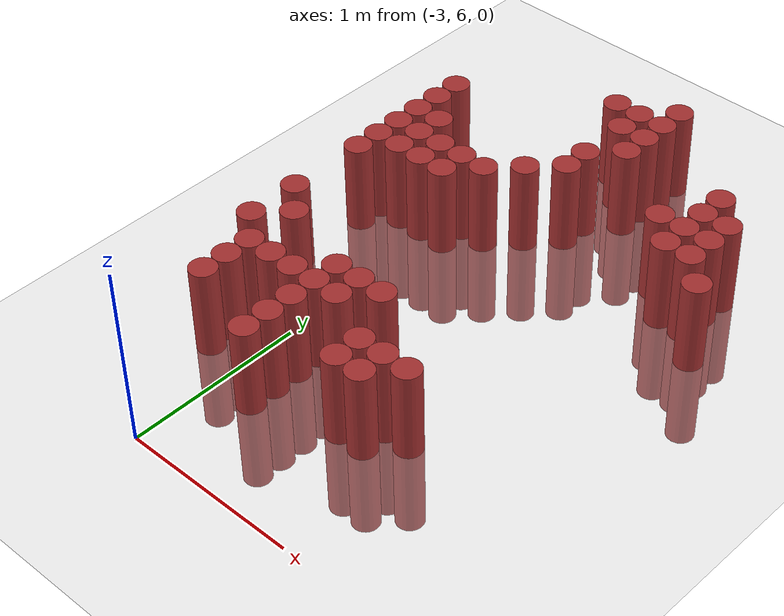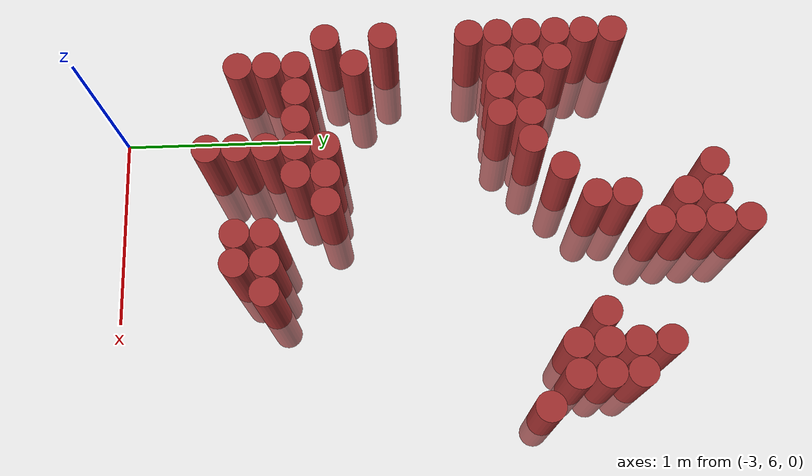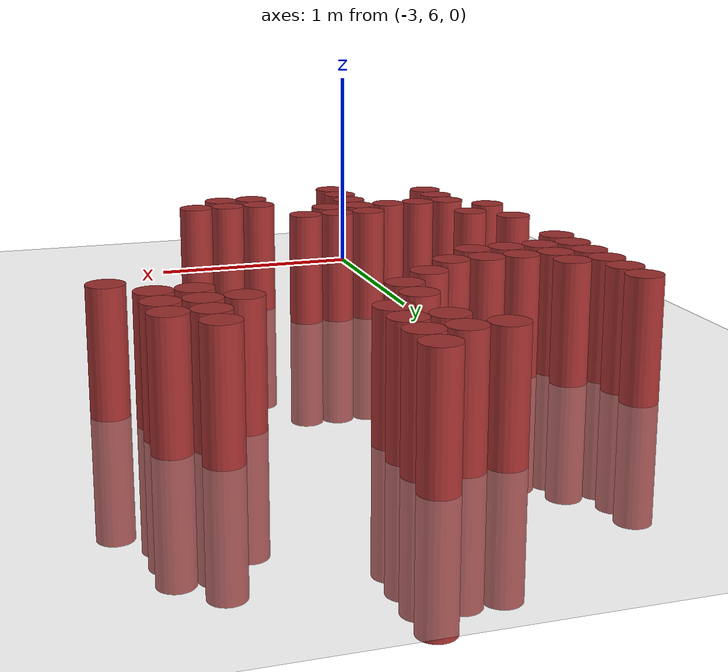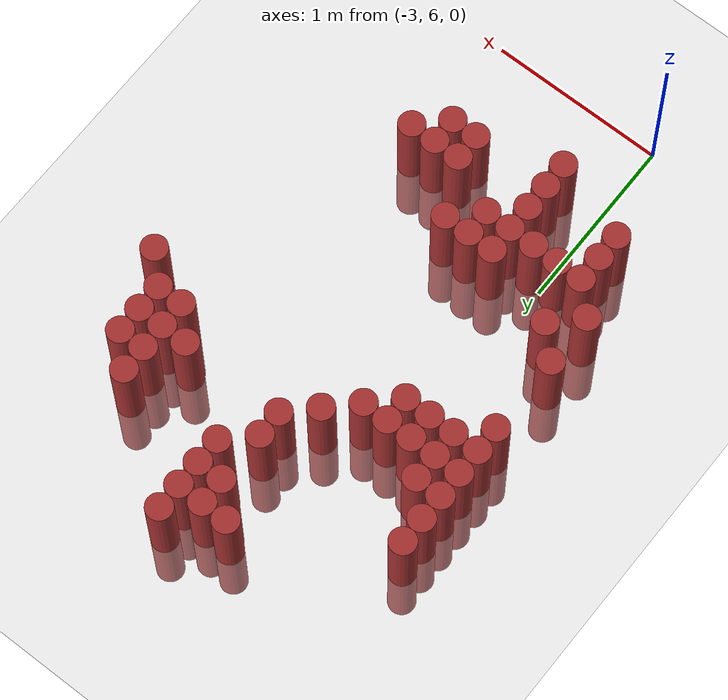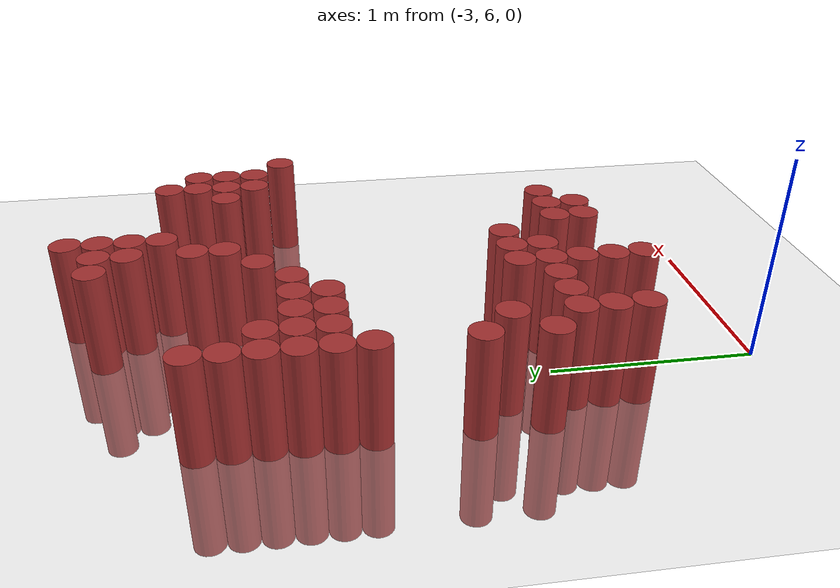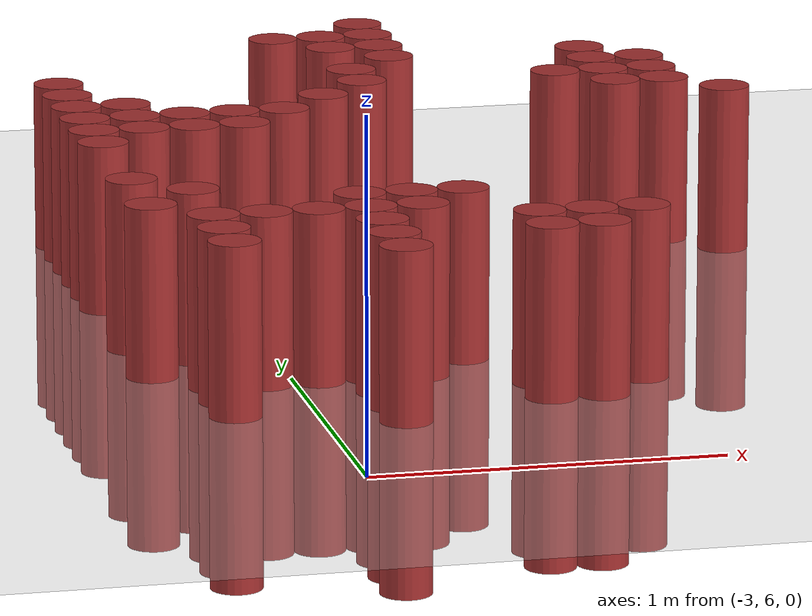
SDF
<sdf version="1.6">
 <world name="default">
  <model name="ground_plane">
   <static>1</static>
   <link name="link">
    <collision name="collision">
     <geometry><plane><normal>0 0 1</normal><size>100 100</size></plane></geometry>
     <surface><friction><ode><mu>100</mu><mu2>50</mu2></ode></friction></surface>
    </collision>
    <visual name="visual">
     <cast_shadows>0</cast_shadows>
     <geometry><plane><normal>0 0 1</normal><size>100 100</size></plane></geometry>
     <material>
      <script><uri>file://media/materials/scripts/gazebo.material</uri><name>Gazebo/Grey</name></script>
     </material>
    </visual>
   </link>
  </model>
  <model name="unit_cylinder_172">
   <static>1</static>
   <pose>-3.375000 7.125000 0.000000 0.000000 0.000000 0.000000</pose>
   <link name="link">
    <inertial>
     <mass>1</mass>
     <inertia><ixx>0.145833</ixx><ixy>0</ixy><ixz>0</ixz><iyy>0.145833</iyy><iyz>0</iyz><izz>0.125</izz></inertia>
    </inertial>
    <collision name="collision">
     <geometry><cylinder><radius>0.075000</radius><length>1</length></cylinder></geometry>
    </collision>
    <visual name="visual">
     <geometry><cylinder><radius>0.075000</radius><length>1</length></cylinder></geometry>
     <material>
      <ambient>0.648000 0.192000 0.192000 1</ambient>
      <diffuse>0.648000 0.192000 0.192000 1</diffuse>
     </material>
     <material>
      <script><name>Gazebo/Grey</name><uri>file://media/materials/scripts/gazebo.material</uri></script>
     </material>
    </visual>
   </link>
  </model>
  <model name="unit_cylinder_173">
   <static>1</static>
   <pose>-3.375000 7.425000 0.000000 0.000000 0.000000 0.000000</pose>
   <link name="link">
    <inertial>
     <mass>1</mass>
     <inertia><ixx>0.145833</ixx><ixy>0</ixy><ixz>0</ixz><iyy>0.145833</iyy><iyz>0</iyz><izz>0.125</izz></inertia>
    </inertial>
    <collision name="collision">
     <geometry><cylinder><radius>0.075000</radius><length>1</length></cylinder></geometry>
    </collision>
    <visual name="visual">
     <geometry><cylinder><radius>0.075000</radius><length>1</length></cylinder></geometry>
     <material>
      <ambient>0.648000 0.192000 0.192000 1</ambient>
      <diffuse>0.648000 0.192000 0.192000 1</diffuse>
     </material>
     <material>
      <script><name>Gazebo/Grey</name><uri>file://media/materials/scripts/gazebo.material</uri></script>
     </material>
    </visual>
   </link>
  </model>
  <model name="unit_cylinder_174">
   <static>1</static>
   <pose>-3.375000 7.875000 0.000000 0.000000 0.000000 0.000000</pose>
   <link name="link">
    <inertial>
     <mass>1</mass>
     <inertia><ixx>0.145833</ixx><ixy>0</ixy><ixz>0</ixz><iyy>0.145833</iyy><iyz>0</iyz><izz>0.125</izz></inertia>
    </inertial>
    <collision name="collision">
     <geometry><cylinder><radius>0.075000</radius><length>1</length></cylinder></geometry>
    </collision>
    <visual name="visual">
     <geometry><cylinder><radius>0.075000</radius><length>1</length></cylinder></geometry>
     <material>
      <ambient>0.648000 0.192000 0.192000 1</ambient>
      <diffuse>0.648000 0.192000 0.192000 1</diffuse>
     </material>
     <material>
      <script><name>Gazebo/Grey</name><uri>file://media/materials/scripts/gazebo.material</uri></script>
     </material>
    </visual>
   </link>
  </model>
  <model name="unit_cylinder_175">
   <static>1</static>
   <pose>-3.375000 8.025000 0.000000 0.000000 0.000000 0.000000</pose>
   <link name="link">
    <inertial>
     <mass>1</mass>
     <inertia><ixx>0.145833</ixx><ixy>0</ixy><ixz>0</ixz><iyy>0.145833</iyy><iyz>0</iyz><izz>0.125</izz></inertia>
    </inertial>
    <collision name="collision">
     <geometry><cylinder><radius>0.075000</radius><length>1</length></cylinder></geometry>
    </collision>
    <visual name="visual">
     <geometry><cylinder><radius>0.075000</radius><length>1</length></cylinder></geometry>
     <material>
      <ambient>0.648000 0.192000 0.192000 1</ambient>
      <diffuse>0.648000 0.192000 0.192000 1</diffuse>
     </material>
     <material>
      <script><name>Gazebo/Grey</name><uri>file://media/materials/scripts/gazebo.material</uri></script>
     </material>
    </visual>
   </link>
  </model>
  <model name="unit_cylinder_176">
   <static>1</static>
   <pose>-3.375000 8.175000 0.000000 0.000000 0.000000 0.000000</pose>
   <link name="link">
    <inertial>
     <mass>1</mass>
     <inertia><ixx>0.145833</ixx><ixy>0</ixy><ixz>0</ixz><iyy>0.145833</iyy><iyz>0</iyz><izz>0.125</izz></inertia>
    </inertial>
    <collision name="collision">
     <geometry><cylinder><radius>0.075000</radius><length>1</length></cylinder></geometry>
    </collision>
    <visual name="visual">
     <geometry><cylinder><radius>0.075000</radius><length>1</length></cylinder></geometry>
     <material>
      <ambient>0.648000 0.192000 0.192000 1</ambient>
      <diffuse>0.648000 0.192000 0.192000 1</diffuse>
     </material>
     <material>
      <script><name>Gazebo/Grey</name><uri>file://media/materials/scripts/gazebo.material</uri></script>
     </material>
    </visual>
   </link>
  </model>
  <model name="unit_cylinder_177">
   <static>1</static>
   <pose>-3.375000 8.325000 0.000000 0.000000 0.000000 0.000000</pose>
   <link name="link">
    <inertial>
     <mass>1</mass>
     <inertia><ixx>0.145833</ixx><ixy>0</ixy><ixz>0</ixz><iyy>0.145833</iyy><iyz>0</iyz><izz>0.125</izz></inertia>
    </inertial>
    <collision name="collision">
     <geometry><cylinder><radius>0.075000</radius><length>1</length></cylinder></geometry>
    </collision>
    <visual name="visual">
     <geometry><cylinder><radius>0.075000</radius><length>1</length></cylinder></geometry>
     <material>
      <ambient>0.648000 0.192000 0.192000 1</ambient>
      <diffuse>0.648000 0.192000 0.192000 1</diffuse>
     </material>
     <material>
      <script><name>Gazebo/Grey</name><uri>file://media/materials/scripts/gazebo.material</uri></script>
     </material>
    </visual>
   </link>
  </model>
  <model name="unit_cylinder_178">
   <static>1</static>
   <pose>-3.375000 8.475000 0.000000 0.000000 0.000000 0.000000</pose>
   <link name="link">
    <inertial>
     <mass>1</mass>
     <inertia><ixx>0.145833</ixx><ixy>0</ixy><ixz>0</ixz><iyy>0.145833</iyy><iyz>0</iyz><izz>0.125</izz></inertia>
    </inertial>
    <collision name="collision">
     <geometry><cylinder><radius>0.075000</radius><length>1</length></cylinder></geometry>
    </collision>
    <visual name="visual">
     <geometry><cylinder><radius>0.075000</radius><length>1</length></cylinder></geometry>
     <material>
      <ambient>0.648000 0.192000 0.192000 1</ambient>
      <diffuse>0.648000 0.192000 0.192000 1</diffuse>
     </material>
     <material>
      <script><name>Gazebo/Grey</name><uri>file://media/materials/scripts/gazebo.material</uri></script>
     </material>
    </visual>
   </link>
  </model>
  <model name="unit_cylinder_179">
   <static>1</static>
   <pose>-3.375000 8.625000 0.000000 0.000000 0.000000 0.000000</pose>
   <link name="link">
    <inertial>
     <mass>1</mass>
     <inertia><ixx>0.145833</ixx><ixy>0</ixy><ixz>0</ixz><iyy>0.145833</iyy><iyz>0</iyz><izz>0.125</izz></inertia>
    </inertial>
    <collision name="collision">
     <geometry><cylinder><radius>0.075000</radius><length>1</length></cylinder></geometry>
    </collision>
    <visual name="visual">
     <geometry><cylinder><radius>0.075000</radius><length>1</length></cylinder></geometry>
     <material>
      <ambient>0.648000 0.192000 0.192000 1</ambient>
      <diffuse>0.648000 0.192000 0.192000 1</diffuse>
     </material>
     <material>
      <script><name>Gazebo/Grey</name><uri>file://media/materials/scripts/gazebo.material</uri></script>
     </material>
    </visual>
   </link>
  </model>
  <model name="unit_cylinder_181">
   <static>1</static>
   <pose>-3.225000 6.675000 0.000000 0.000000 0.000000 0.000000</pose>
   <link name="link">
    <inertial>
     <mass>1</mass>
     <inertia><ixx>0.145833</ixx><ixy>0</ixy><ixz>0</ixz><iyy>0.145833</iyy><iyz>0</iyz><izz>0.125</izz></inertia>
    </inertial>
    <collision name="collision">
     <geometry><cylinder><radius>0.075000</radius><length>1</length></cylinder></geometry>
    </collision>
    <visual name="visual">
     <geometry><cylinder><radius>0.075000</radius><length>1</length></cylinder></geometry>
     <material>
      <ambient>0.648000 0.192000 0.192000 1</ambient>
      <diffuse>0.648000 0.192000 0.192000 1</diffuse>
     </material>
     <material>
      <script><name>Gazebo/Grey</name><uri>file://media/materials/scripts/gazebo.material</uri></script>
     </material>
    </visual>
   </link>
  </model>
  <model name="unit_cylinder_182">
   <static>1</static>
   <pose>-3.225000 6.825000 0.000000 0.000000 0.000000 0.000000</pose>
   <link name="link">
    <inertial>
     <mass>1</mass>
     <inertia><ixx>0.145833</ixx><ixy>0</ixy><ixz>0</ixz><iyy>0.145833</iyy><iyz>0</iyz><izz>0.125</izz></inertia>
    </inertial>
    <collision name="collision">
     <geometry><cylinder><radius>0.075000</radius><length>1</length></cylinder></geometry>
    </collision>
    <visual name="visual">
     <geometry><cylinder><radius>0.075000</radius><length>1</length></cylinder></geometry>
     <material>
      <ambient>0.648000 0.192000 0.192000 1</ambient>
      <diffuse>0.648000 0.192000 0.192000 1</diffuse>
     </material>
     <material>
      <script><name>Gazebo/Grey</name><uri>file://media/materials/scripts/gazebo.material</uri></script>
     </material>
    </visual>
   </link>
  </model>
  <model name="unit_cylinder_183">
   <static>1</static>
   <pose>-3.225000 6.975000 0.000000 0.000000 0.000000 0.000000</pose>
   <link name="link">
    <inertial>
     <mass>1</mass>
     <inertia><ixx>0.145833</ixx><ixy>0</ixy><ixz>0</ixz><iyy>0.145833</iyy><iyz>0</iyz><izz>0.125</izz></inertia>
    </inertial>
    <collision name="collision">
     <geometry><cylinder><radius>0.075000</radius><length>1</length></cylinder></geometry>
    </collision>
    <visual name="visual">
     <geometry><cylinder><radius>0.075000</radius><length>1</length></cylinder></geometry>
     <material>
      <ambient>0.648000 0.192000 0.192000 1</ambient>
      <diffuse>0.648000 0.192000 0.192000 1</diffuse>
     </material>
     <material>
      <script><name>Gazebo/Grey</name><uri>file://media/materials/scripts/gazebo.material</uri></script>
     </material>
    </visual>
   </link>
  </model>
  <model name="unit_cylinder_184">
   <static>1</static>
   <pose>-3.225000 7.275000 0.000000 0.000000 0.000000 0.000000</pose>
   <link name="link">
    <inertial>
     <mass>1</mass>
     <inertia><ixx>0.145833</ixx><ixy>0</ixy><ixz>0</ixz><iyy>0.145833</iyy><iyz>0</iyz><izz>0.125</izz></inertia>
    </inertial>
    <collision name="collision">
     <geometry><cylinder><radius>0.075000</radius><length>1</length></cylinder></geometry>
    </collision>
    <visual name="visual">
     <geometry><cylinder><radius>0.075000</radius><length>1</length></cylinder></geometry>
     <material>
      <ambient>0.648000 0.192000 0.192000 1</ambient>
      <diffuse>0.648000 0.192000 0.192000 1</diffuse>
     </material>
     <material>
      <script><name>Gazebo/Grey</name><uri>file://media/materials/scripts/gazebo.material</uri></script>
     </material>
    </visual>
   </link>
  </model>
  <model name="unit_cylinder_185">
   <static>1</static>
   <pose>-3.225000 8.025000 0.000000 0.000000 0.000000 0.000000</pose>
   <link name="link">
    <inertial>
     <mass>1</mass>
     <inertia><ixx>0.145833</ixx><ixy>0</ixy><ixz>0</ixz><iyy>0.145833</iyy><iyz>0</iyz><izz>0.125</izz></inertia>
    </inertial>
    <collision name="collision">
     <geometry><cylinder><radius>0.075000</radius><length>1</length></cylinder></geometry>
    </collision>
    <visual name="visual">
     <geometry><cylinder><radius>0.075000</radius><length>1</length></cylinder></geometry>
     <material>
      <ambient>0.648000 0.192000 0.192000 1</ambient>
      <diffuse>0.648000 0.192000 0.192000 1</diffuse>
     </material>
     <material>
      <script><name>Gazebo/Grey</name><uri>file://media/materials/scripts/gazebo.material</uri></script>
     </material>
    </visual>
   </link>
  </model>
  <model name="unit_cylinder_186">
   <static>1</static>
   <pose>-3.225000 8.175000 0.000000 0.000000 0.000000 0.000000</pose>
   <link name="link">
    <inertial>
     <mass>1</mass>
     <inertia><ixx>0.145833</ixx><ixy>0</ixy><ixz>0</ixz><iyy>0.145833</iyy><iyz>0</iyz><izz>0.125</izz></inertia>
    </inertial>
    <collision name="collision">
     <geometry><cylinder><radius>0.075000</radius><length>1</length></cylinder></geometry>
    </collision>
    <visual name="visual">
     <geometry><cylinder><radius>0.075000</radius><length>1</length></cylinder></geometry>
     <material>
      <ambient>0.648000 0.192000 0.192000 1</ambient>
      <diffuse>0.648000 0.192000 0.192000 1</diffuse>
     </material>
     <material>
      <script><name>Gazebo/Grey</name><uri>file://media/materials/scripts/gazebo.material</uri></script>
     </material>
    </visual>
   </link>
  </model>
  <model name="unit_cylinder_187">
   <static>1</static>
   <pose>-3.225000 8.325000 0.000000 0.000000 0.000000 0.000000</pose>
   <link name="link">
    <inertial>
     <mass>1</mass>
     <inertia><ixx>0.145833</ixx><ixy>0</ixy><ixz>0</ixz><iyy>0.145833</iyy><iyz>0</iyz><izz>0.125</izz></inertia>
    </inertial>
    <collision name="collision">
     <geometry><cylinder><radius>0.075000</radius><length>1</length></cylinder></geometry>
    </collision>
    <visual name="visual">
     <geometry><cylinder><radius>0.075000</radius><length>1</length></cylinder></geometry>
     <material>
      <ambient>0.648000 0.192000 0.192000 1</ambient>
      <diffuse>0.648000 0.192000 0.192000 1</diffuse>
     </material>
     <material>
      <script><name>Gazebo/Grey</name><uri>file://media/materials/scripts/gazebo.material</uri></script>
     </material>
    </visual>
   </link>
  </model>
  <model name="unit_cylinder_190">
   <static>1</static>
   <pose>-3.075000 6.975000 0.000000 0.000000 0.000000 0.000000</pose>
   <link name="link">
    <inertial>
     <mass>1</mass>
     <inertia><ixx>0.145833</ixx><ixy>0</ixy><ixz>0</ixz><iyy>0.145833</iyy><iyz>0</iyz><izz>0.125</izz></inertia>
    </inertial>
    <collision name="collision">
     <geometry><cylinder><radius>0.075000</radius><length>1</length></cylinder></geometry>
    </collision>
    <visual name="visual">
     <geometry><cylinder><radius>0.075000</radius><length>1</length></cylinder></geometry>
     <material>
      <ambient>0.648000 0.192000 0.192000 1</ambient>
      <diffuse>0.648000 0.192000 0.192000 1</diffuse>
     </material>
     <material>
      <script><name>Gazebo/Grey</name><uri>file://media/materials/scripts/gazebo.material</uri></script>
     </material>
    </visual>
   </link>
  </model>
  <model name="unit_cylinder_191">
   <static>1</static>
   <pose>-3.075000 8.025000 0.000000 0.000000 0.000000 0.000000</pose>
   <link name="link">
    <inertial>
     <mass>1</mass>
     <inertia><ixx>0.145833</ixx><ixy>0</ixy><ixz>0</ixz><iyy>0.145833</iyy><iyz>0</iyz><izz>0.125</izz></inertia>
    </inertial>
    <collision name="collision">
     <geometry><cylinder><radius>0.075000</radius><length>1</length></cylinder></geometry>
    </collision>
    <visual name="visual">
     <geometry><cylinder><radius>0.075000</radius><length>1</length></cylinder></geometry>
     <material>
      <ambient>0.648000 0.192000 0.192000 1</ambient>
      <diffuse>0.648000 0.192000 0.192000 1</diffuse>
     </material>
     <material>
      <script><name>Gazebo/Grey</name><uri>file://media/materials/scripts/gazebo.material</uri></script>
     </material>
    </visual>
   </link>
  </model>
  <model name="unit_cylinder_192">
   <static>1</static>
   <pose>-3.075000 8.175000 0.000000 0.000000 0.000000 0.000000</pose>
   <link name="link">
    <inertial>
     <mass>1</mass>
     <inertia><ixx>0.145833</ixx><ixy>0</ixy><ixz>0</ixz><iyy>0.145833</iyy><iyz>0</iyz><izz>0.125</izz></inertia>
    </inertial>
    <collision name="collision">
     <geometry><cylinder><radius>0.075000</radius><length>1</length></cylinder></geometry>
    </collision>
    <visual name="visual">
     <geometry><cylinder><radius>0.075000</radius><length>1</length></cylinder></geometry>
     <material>
      <ambient>0.648000 0.192000 0.192000 1</ambient>
      <diffuse>0.648000 0.192000 0.192000 1</diffuse>
     </material>
     <material>
      <script><name>Gazebo/Grey</name><uri>file://media/materials/scripts/gazebo.material</uri></script>
     </material>
    </visual>
   </link>
  </model>
  <model name="unit_cylinder_195">
   <static>1</static>
   <pose>-2.925000 6.975000 0.000000 0.000000 0.000000 0.000000</pose>
   <link name="link">
    <inertial>
     <mass>1</mass>
     <inertia><ixx>0.145833</ixx><ixy>0</ixy><ixz>0</ixz><iyy>0.145833</iyy><iyz>0</iyz><izz>0.125</izz></inertia>
    </inertial>
    <collision name="collision">
     <geometry><cylinder><radius>0.075000</radius><length>1</length></cylinder></geometry>
    </collision>
    <visual name="visual">
     <geometry><cylinder><radius>0.075000</radius><length>1</length></cylinder></geometry>
     <material>
      <ambient>0.648000 0.192000 0.192000 1</ambient>
      <diffuse>0.648000 0.192000 0.192000 1</diffuse>
     </material>
     <material>
      <script><name>Gazebo/Grey</name><uri>file://media/materials/scripts/gazebo.material</uri></script>
     </material>
    </visual>
   </link>
  </model>
  <model name="unit_cylinder_196">
   <static>1</static>
   <pose>-2.925000 8.025000 0.000000 0.000000 0.000000 0.000000</pose>
   <link name="link">
    <inertial>
     <mass>1</mass>
     <inertia><ixx>0.145833</ixx><ixy>0</ixy><ixz>0</ixz><iyy>0.145833</iyy><iyz>0</iyz><izz>0.125</izz></inertia>
    </inertial>
    <collision name="collision">
     <geometry><cylinder><radius>0.075000</radius><length>1</length></cylinder></geometry>
    </collision>
    <visual name="visual">
     <geometry><cylinder><radius>0.075000</radius><length>1</length></cylinder></geometry>
     <material>
      <ambient>0.648000 0.192000 0.192000 1</ambient>
      <diffuse>0.648000 0.192000 0.192000 1</diffuse>
     </material>
     <material>
      <script><name>Gazebo/Grey</name><uri>file://media/materials/scripts/gazebo.material</uri></script>
     </material>
    </visual>
   </link>
  </model>
  <model name="unit_cylinder_197">
   <static>1</static>
   <pose>-2.925000 8.175000 0.000000 0.000000 0.000000 0.000000</pose>
   <link name="link">
    <inertial>
     <mass>1</mass>
     <inertia><ixx>0.145833</ixx><ixy>0</ixy><ixz>0</ixz><iyy>0.145833</iyy><iyz>0</iyz><izz>0.125</izz></inertia>
    </inertial>
    <collision name="collision">
     <geometry><cylinder><radius>0.075000</radius><length>1</length></cylinder></geometry>
    </collision>
    <visual name="visual">
     <geometry><cylinder><radius>0.075000</radius><length>1</length></cylinder></geometry>
     <material>
      <ambient>0.648000 0.192000 0.192000 1</ambient>
      <diffuse>0.648000 0.192000 0.192000 1</diffuse>
     </material>
     <material>
      <script><name>Gazebo/Grey</name><uri>file://media/materials/scripts/gazebo.material</uri></script>
     </material>
    </visual>
   </link>
  </model>
  <model name="unit_cylinder_201">
   <static>1</static>
   <pose>-2.775000 6.525000 0.000000 0.000000 0.000000 0.000000</pose>
   <link name="link">
    <inertial>
     <mass>1</mass>
     <inertia><ixx>0.145833</ixx><ixy>0</ixy><ixz>0</ixz><iyy>0.145833</iyy><iyz>0</iyz><izz>0.125</izz></inertia>
    </inertial>
    <collision name="collision">
     <geometry><cylinder><radius>0.075000</radius><length>1</length></cylinder></geometry>
    </collision>
    <visual name="visual">
     <geometry><cylinder><radius>0.075000</radius><length>1</length></cylinder></geometry>
     <material>
      <ambient>0.648000 0.192000 0.192000 1</ambient>
      <diffuse>0.648000 0.192000 0.192000 1</diffuse>
     </material>
     <material>
      <script><name>Gazebo/Grey</name><uri>file://media/materials/scripts/gazebo.material</uri></script>
     </material>
    </visual>
   </link>
  </model>
  <model name="unit_cylinder_202">
   <static>1</static>
   <pose>-2.775000 6.675000 0.000000 0.000000 0.000000 0.000000</pose>
   <link name="link">
    <inertial>
     <mass>1</mass>
     <inertia><ixx>0.145833</ixx><ixy>0</ixy><ixz>0</ixz><iyy>0.145833</iyy><iyz>0</iyz><izz>0.125</izz></inertia>
    </inertial>
    <collision name="collision">
     <geometry><cylinder><radius>0.075000</radius><length>1</length></cylinder></geometry>
    </collision>
    <visual name="visual">
     <geometry><cylinder><radius>0.075000</radius><length>1</length></cylinder></geometry>
     <material>
      <ambient>0.648000 0.192000 0.192000 1</ambient>
      <diffuse>0.648000 0.192000 0.192000 1</diffuse>
     </material>
     <material>
      <script><name>Gazebo/Grey</name><uri>file://media/materials/scripts/gazebo.material</uri></script>
     </material>
    </visual>
   </link>
  </model>
  <model name="unit_cylinder_203">
   <static>1</static>
   <pose>-2.775000 6.825000 0.000000 0.000000 0.000000 0.000000</pose>
   <link name="link">
    <inertial>
     <mass>1</mass>
     <inertia><ixx>0.145833</ixx><ixy>0</ixy><ixz>0</ixz><iyy>0.145833</iyy><iyz>0</iyz><izz>0.125</izz></inertia>
    </inertial>
    <collision name="collision">
     <geometry><cylinder><radius>0.075000</radius><length>1</length></cylinder></geometry>
    </collision>
    <visual name="visual">
     <geometry><cylinder><radius>0.075000</radius><length>1</length></cylinder></geometry>
     <material>
      <ambient>0.648000 0.192000 0.192000 1</ambient>
      <diffuse>0.648000 0.192000 0.192000 1</diffuse>
     </material>
     <material>
      <script><name>Gazebo/Grey</name><uri>file://media/materials/scripts/gazebo.material</uri></script>
     </material>
    </visual>
   </link>
  </model>
  <model name="unit_cylinder_204">
   <static>1</static>
   <pose>-2.775000 6.975000 0.000000 0.000000 0.000000 0.000000</pose>
   <link name="link">
    <inertial>
     <mass>1</mass>
     <inertia><ixx>0.145833</ixx><ixy>0</ixy><ixz>0</ixz><iyy>0.145833</iyy><iyz>0</iyz><izz>0.125</izz></inertia>
    </inertial>
    <collision name="collision">
     <geometry><cylinder><radius>0.075000</radius><length>1</length></cylinder></geometry>
    </collision>
    <visual name="visual">
     <geometry><cylinder><radius>0.075000</radius><length>1</length></cylinder></geometry>
     <material>
      <ambient>0.648000 0.192000 0.192000 1</ambient>
      <diffuse>0.648000 0.192000 0.192000 1</diffuse>
     </material>
     <material>
      <script><name>Gazebo/Grey</name><uri>file://media/materials/scripts/gazebo.material</uri></script>
     </material>
    </visual>
   </link>
  </model>
  <model name="unit_cylinder_205">
   <static>1</static>
   <pose>-2.775000 7.125000 0.000000 0.000000 0.000000 0.000000</pose>
   <link name="link">
    <inertial>
     <mass>1</mass>
     <inertia><ixx>0.145833</ixx><ixy>0</ixy><ixz>0</ixz><iyy>0.145833</iyy><iyz>0</iyz><izz>0.125</izz></inertia>
    </inertial>
    <collision name="collision">
     <geometry><cylinder><radius>0.075000</radius><length>1</length></cylinder></geometry>
    </collision>
    <visual name="visual">
     <geometry><cylinder><radius>0.075000</radius><length>1</length></cylinder></geometry>
     <material>
      <ambient>0.648000 0.192000 0.192000 1</ambient>
      <diffuse>0.648000 0.192000 0.192000 1</diffuse>
     </material>
     <material>
      <script><name>Gazebo/Grey</name><uri>file://media/materials/scripts/gazebo.material</uri></script>
     </material>
    </visual>
   </link>
  </model>
  <model name="unit_cylinder_206">
   <static>1</static>
   <pose>-2.775000 8.175000 0.000000 0.000000 0.000000 0.000000</pose>
   <link name="link">
    <inertial>
     <mass>1</mass>
     <inertia><ixx>0.145833</ixx><ixy>0</ixy><ixz>0</ixz><iyy>0.145833</iyy><iyz>0</iyz><izz>0.125</izz></inertia>
    </inertial>
    <collision name="collision">
     <geometry><cylinder><radius>0.075000</radius><length>1</length></cylinder></geometry>
    </collision>
    <visual name="visual">
     <geometry><cylinder><radius>0.075000</radius><length>1</length></cylinder></geometry>
     <material>
      <ambient>0.648000 0.192000 0.192000 1</ambient>
      <diffuse>0.648000 0.192000 0.192000 1</diffuse>
     </material>
     <material>
      <script><name>Gazebo/Grey</name><uri>file://media/materials/scripts/gazebo.material</uri></script>
     </material>
    </visual>
   </link>
  </model>
  <model name="unit_cylinder_212">
   <static>1</static>
   <pose>-2.625000 6.975000 0.000000 0.000000 0.000000 0.000000</pose>
   <link name="link">
    <inertial>
     <mass>1</mass>
     <inertia><ixx>0.145833</ixx><ixy>0</ixy><ixz>0</ixz><iyy>0.145833</iyy><iyz>0</iyz><izz>0.125</izz></inertia>
    </inertial>
    <collision name="collision">
     <geometry><cylinder><radius>0.075000</radius><length>1</length></cylinder></geometry>
    </collision>
    <visual name="visual">
     <geometry><cylinder><radius>0.075000</radius><length>1</length></cylinder></geometry>
     <material>
      <ambient>0.648000 0.192000 0.192000 1</ambient>
      <diffuse>0.648000 0.192000 0.192000 1</diffuse>
     </material>
     <material>
      <script><name>Gazebo/Grey</name><uri>file://media/materials/scripts/gazebo.material</uri></script>
     </material>
    </visual>
   </link>
  </model>
  <model name="unit_cylinder_213">
   <static>1</static>
   <pose>-2.625000 7.125000 0.000000 0.000000 0.000000 0.000000</pose>
   <link name="link">
    <inertial>
     <mass>1</mass>
     <inertia><ixx>0.145833</ixx><ixy>0</ixy><ixz>0</ixz><iyy>0.145833</iyy><iyz>0</iyz><izz>0.125</izz></inertia>
    </inertial>
    <collision name="collision">
     <geometry><cylinder><radius>0.075000</radius><length>1</length></cylinder></geometry>
    </collision>
    <visual name="visual">
     <geometry><cylinder><radius>0.075000</radius><length>1</length></cylinder></geometry>
     <material>
      <ambient>0.648000 0.192000 0.192000 1</ambient>
      <diffuse>0.648000 0.192000 0.192000 1</diffuse>
     </material>
     <material>
      <script><name>Gazebo/Grey</name><uri>file://media/materials/scripts/gazebo.material</uri></script>
     </material>
    </visual>
   </link>
  </model>
  <model name="unit_cylinder_214">
   <static>1</static>
   <pose>-2.625000 8.325000 0.000000 0.000000 0.000000 0.000000</pose>
   <link name="link">
    <inertial>
     <mass>1</mass>
     <inertia><ixx>0.145833</ixx><ixy>0</ixy><ixz>0</ixz><iyy>0.145833</iyy><iyz>0</iyz><izz>0.125</izz></inertia>
    </inertial>
    <collision name="collision">
     <geometry><cylinder><radius>0.075000</radius><length>1</length></cylinder></geometry>
    </collision>
    <visual name="visual">
     <geometry><cylinder><radius>0.075000</radius><length>1</length></cylinder></geometry>
     <material>
      <ambient>0.648000 0.192000 0.192000 1</ambient>
      <diffuse>0.648000 0.192000 0.192000 1</diffuse>
     </material>
     <material>
      <script><name>Gazebo/Grey</name><uri>file://media/materials/scripts/gazebo.material</uri></script>
     </material>
    </visual>
   </link>
  </model>
  <model name="unit_cylinder_215">
   <static>1</static>
   <pose>-2.625000 9.075000 0.000000 0.000000 0.000000 0.000000</pose>
   <link name="link">
    <inertial>
     <mass>1</mass>
     <inertia><ixx>0.145833</ixx><ixy>0</ixy><ixz>0</ixz><iyy>0.145833</iyy><iyz>0</iyz><izz>0.125</izz></inertia>
    </inertial>
    <collision name="collision">
     <geometry><cylinder><radius>0.075000</radius><length>1</length></cylinder></geometry>
    </collision>
    <visual name="visual">
     <geometry><cylinder><radius>0.075000</radius><length>1</length></cylinder></geometry>
     <material>
      <ambient>0.648000 0.192000 0.192000 1</ambient>
      <diffuse>0.648000 0.192000 0.192000 1</diffuse>
     </material>
     <material>
      <script><name>Gazebo/Grey</name><uri>file://media/materials/scripts/gazebo.material</uri></script>
     </material>
    </visual>
   </link>
  </model>
  <model name="unit_cylinder_218">
   <static>1</static>
   <pose>-2.475000 7.125000 0.000000 0.000000 0.000000 0.000000</pose>
   <link name="link">
    <inertial>
     <mass>1</mass>
     <inertia><ixx>0.145833</ixx><ixy>0</ixy><ixz>0</ixz><iyy>0.145833</iyy><iyz>0</iyz><izz>0.125</izz></inertia>
    </inertial>
    <collision name="collision">
     <geometry><cylinder><radius>0.075000</radius><length>1</length></cylinder></geometry>
    </collision>
    <visual name="visual">
     <geometry><cylinder><radius>0.075000</radius><length>1</length></cylinder></geometry>
     <material>
      <ambient>0.648000 0.192000 0.192000 1</ambient>
      <diffuse>0.648000 0.192000 0.192000 1</diffuse>
     </material>
     <material>
      <script><name>Gazebo/Grey</name><uri>file://media/materials/scripts/gazebo.material</uri></script>
     </material>
    </visual>
   </link>
  </model>
  <model name="unit_cylinder_219">
   <static>1</static>
   <pose>-2.475000 8.475000 0.000000 0.000000 0.000000 0.000000</pose>
   <link name="link">
    <inertial>
     <mass>1</mass>
     <inertia><ixx>0.145833</ixx><ixy>0</ixy><ixz>0</ixz><iyy>0.145833</iyy><iyz>0</iyz><izz>0.125</izz></inertia>
    </inertial>
    <collision name="collision">
     <geometry><cylinder><radius>0.075000</radius><length>1</length></cylinder></geometry>
    </collision>
    <visual name="visual">
     <geometry><cylinder><radius>0.075000</radius><length>1</length></cylinder></geometry>
     <material>
      <ambient>0.648000 0.192000 0.192000 1</ambient>
      <diffuse>0.648000 0.192000 0.192000 1</diffuse>
     </material>
     <material>
      <script><name>Gazebo/Grey</name><uri>file://media/materials/scripts/gazebo.material</uri></script>
     </material>
    </visual>
   </link>
  </model>
  <model name="unit_cylinder_220">
   <static>1</static>
   <pose>-2.475000 8.625000 0.000000 0.000000 0.000000 0.000000</pose>
   <link name="link">
    <inertial>
     <mass>1</mass>
     <inertia><ixx>0.145833</ixx><ixy>0</ixy><ixz>0</ixz><iyy>0.145833</iyy><iyz>0</iyz><izz>0.125</izz></inertia>
    </inertial>
    <collision name="collision">
     <geometry><cylinder><radius>0.075000</radius><length>1</length></cylinder></geometry>
    </collision>
    <visual name="visual">
     <geometry><cylinder><radius>0.075000</radius><length>1</length></cylinder></geometry>
     <material>
      <ambient>0.648000 0.192000 0.192000 1</ambient>
      <diffuse>0.648000 0.192000 0.192000 1</diffuse>
     </material>
     <material>
      <script><name>Gazebo/Grey</name><uri>file://media/materials/scripts/gazebo.material</uri></script>
     </material>
    </visual>
   </link>
  </model>
  <model name="unit_cylinder_221">
   <static>1</static>
   <pose>-2.475000 8.925000 0.000000 0.000000 0.000000 0.000000</pose>
   <link name="link">
    <inertial>
     <mass>1</mass>
     <inertia><ixx>0.145833</ixx><ixy>0</ixy><ixz>0</ixz><iyy>0.145833</iyy><iyz>0</iyz><izz>0.125</izz></inertia>
    </inertial>
    <collision name="collision">
     <geometry><cylinder><radius>0.075000</radius><length>1</length></cylinder></geometry>
    </collision>
    <visual name="visual">
     <geometry><cylinder><radius>0.075000</radius><length>1</length></cylinder></geometry>
     <material>
      <ambient>0.648000 0.192000 0.192000 1</ambient>
      <diffuse>0.648000 0.192000 0.192000 1</diffuse>
     </material>
     <material>
      <script><name>Gazebo/Grey</name><uri>file://media/materials/scripts/gazebo.material</uri></script>
     </material>
    </visual>
   </link>
  </model>
  <model name="unit_cylinder_222">
   <static>1</static>
   <pose>-2.475000 9.075000 0.000000 0.000000 0.000000 0.000000</pose>
   <link name="link">
    <inertial>
     <mass>1</mass>
     <inertia><ixx>0.145833</ixx><ixy>0</ixy><ixz>0</ixz><iyy>0.145833</iyy><iyz>0</iyz><izz>0.125</izz></inertia>
    </inertial>
    <collision name="collision">
     <geometry><cylinder><radius>0.075000</radius><length>1</length></cylinder></geometry>
    </collision>
    <visual name="visual">
     <geometry><cylinder><radius>0.075000</radius><length>1</length></cylinder></geometry>
     <material>
      <ambient>0.648000 0.192000 0.192000 1</ambient>
      <diffuse>0.648000 0.192000 0.192000 1</diffuse>
     </material>
     <material>
      <script><name>Gazebo/Grey</name><uri>file://media/materials/scripts/gazebo.material</uri></script>
     </material>
    </visual>
   </link>
  </model>
  <model name="unit_cylinder_228">
   <static>1</static>
   <pose>-2.325000 6.675000 0.000000 0.000000 0.000000 0.000000</pose>
   <link name="link">
    <inertial>
     <mass>1</mass>
     <inertia><ixx>0.145833</ixx><ixy>0</ixy><ixz>0</ixz><iyy>0.145833</iyy><iyz>0</iyz><izz>0.125</izz></inertia>
    </inertial>
    <collision name="collision">
     <geometry><cylinder><radius>0.075000</radius><length>1</length></cylinder></geometry>
    </collision>
    <visual name="visual">
     <geometry><cylinder><radius>0.075000</radius><length>1</length></cylinder></geometry>
     <material>
      <ambient>0.648000 0.192000 0.192000 1</ambient>
      <diffuse>0.648000 0.192000 0.192000 1</diffuse>
     </material>
     <material>
      <script><name>Gazebo/Grey</name><uri>file://media/materials/scripts/gazebo.material</uri></script>
     </material>
    </visual>
   </link>
  </model>
  <model name="unit_cylinder_229">
   <static>1</static>
   <pose>-2.325000 6.825000 0.000000 0.000000 0.000000 0.000000</pose>
   <link name="link">
    <inertial>
     <mass>1</mass>
     <inertia><ixx>0.145833</ixx><ixy>0</ixy><ixz>0</ixz><iyy>0.145833</iyy><iyz>0</iyz><izz>0.125</izz></inertia>
    </inertial>
    <collision name="collision">
     <geometry><cylinder><radius>0.075000</radius><length>1</length></cylinder></geometry>
    </collision>
    <visual name="visual">
     <geometry><cylinder><radius>0.075000</radius><length>1</length></cylinder></geometry>
     <material>
      <ambient>0.648000 0.192000 0.192000 1</ambient>
      <diffuse>0.648000 0.192000 0.192000 1</diffuse>
     </material>
     <material>
      <script><name>Gazebo/Grey</name><uri>file://media/materials/scripts/gazebo.material</uri></script>
     </material>
    </visual>
   </link>
  </model>
  <model name="unit_cylinder_230">
   <static>1</static>
   <pose>-2.325000 8.775000 0.000000 0.000000 0.000000 0.000000</pose>
   <link name="link">
    <inertial>
     <mass>1</mass>
     <inertia><ixx>0.145833</ixx><ixy>0</ixy><ixz>0</ixz><iyy>0.145833</iyy><iyz>0</iyz><izz>0.125</izz></inertia>
    </inertial>
    <collision name="collision">
     <geometry><cylinder><radius>0.075000</radius><length>1</length></cylinder></geometry>
    </collision>
    <visual name="visual">
     <geometry><cylinder><radius>0.075000</radius><length>1</length></cylinder></geometry>
     <material>
      <ambient>0.648000 0.192000 0.192000 1</ambient>
      <diffuse>0.648000 0.192000 0.192000 1</diffuse>
     </material>
     <material>
      <script><name>Gazebo/Grey</name><uri>file://media/materials/scripts/gazebo.material</uri></script>
     </material>
    </visual>
   </link>
  </model>
  <model name="unit_cylinder_231">
   <static>1</static>
   <pose>-2.325000 8.925000 0.000000 0.000000 0.000000 0.000000</pose>
   <link name="link">
    <inertial>
     <mass>1</mass>
     <inertia><ixx>0.145833</ixx><ixy>0</ixy><ixz>0</ixz><iyy>0.145833</iyy><iyz>0</iyz><izz>0.125</izz></inertia>
    </inertial>
    <collision name="collision">
     <geometry><cylinder><radius>0.075000</radius><length>1</length></cylinder></geometry>
    </collision>
    <visual name="visual">
     <geometry><cylinder><radius>0.075000</radius><length>1</length></cylinder></geometry>
     <material>
      <ambient>0.648000 0.192000 0.192000 1</ambient>
      <diffuse>0.648000 0.192000 0.192000 1</diffuse>
     </material>
     <material>
      <script><name>Gazebo/Grey</name><uri>file://media/materials/scripts/gazebo.material</uri></script>
     </material>
    </visual>
   </link>
  </model>
  <model name="unit_cylinder_232">
   <static>1</static>
   <pose>-2.325000 9.075000 0.000000 0.000000 0.000000 0.000000</pose>
   <link name="link">
    <inertial>
     <mass>1</mass>
     <inertia><ixx>0.145833</ixx><ixy>0</ixy><ixz>0</ixz><iyy>0.145833</iyy><iyz>0</iyz><izz>0.125</izz></inertia>
    </inertial>
    <collision name="collision">
     <geometry><cylinder><radius>0.075000</radius><length>1</length></cylinder></geometry>
    </collision>
    <visual name="visual">
     <geometry><cylinder><radius>0.075000</radius><length>1</length></cylinder></geometry>
     <material>
      <ambient>0.648000 0.192000 0.192000 1</ambient>
      <diffuse>0.648000 0.192000 0.192000 1</diffuse>
     </material>
     <material>
      <script><name>Gazebo/Grey</name><uri>file://media/materials/scripts/gazebo.material</uri></script>
     </material>
    </visual>
   </link>
  </model>
  <model name="unit_cylinder_233">
   <static>1</static>
   <pose>-2.325000 9.225000 0.000000 0.000000 0.000000 0.000000</pose>
   <link name="link">
    <inertial>
     <mass>1</mass>
     <inertia><ixx>0.145833</ixx><ixy>0</ixy><ixz>0</ixz><iyy>0.145833</iyy><iyz>0</iyz><izz>0.125</izz></inertia>
    </inertial>
    <collision name="collision">
     <geometry><cylinder><radius>0.075000</radius><length>1</length></cylinder></geometry>
    </collision>
    <visual name="visual">
     <geometry><cylinder><radius>0.075000</radius><length>1</length></cylinder></geometry>
     <material>
      <ambient>0.648000 0.192000 0.192000 1</ambient>
      <diffuse>0.648000 0.192000 0.192000 1</diffuse>
     </material>
     <material>
      <script><name>Gazebo/Grey</name><uri>file://media/materials/scripts/gazebo.material</uri></script>
     </material>
    </visual>
   </link>
  </model>
  <model name="unit_cylinder_234">
   <static>1</static>
   <pose>-2.175000 6.675000 0.000000 0.000000 0.000000 0.000000</pose>
   <link name="link">
    <inertial>
     <mass>1</mass>
     <inertia><ixx>0.145833</ixx><ixy>0</ixy><ixz>0</ixz><iyy>0.145833</iyy><iyz>0</iyz><izz>0.125</izz></inertia>
    </inertial>
    <collision name="collision">
     <geometry><cylinder><radius>0.075000</radius><length>1</length></cylinder></geometry>
    </collision>
    <visual name="visual">
     <geometry><cylinder><radius>0.075000</radius><length>1</length></cylinder></geometry>
     <material>
      <ambient>0.648000 0.192000 0.192000 1</ambient>
      <diffuse>0.648000 0.192000 0.192000 1</diffuse>
     </material>
     <material>
      <script><name>Gazebo/Grey</name><uri>file://media/materials/scripts/gazebo.material</uri></script>
     </material>
    </visual>
   </link>
  </model>
  <model name="unit_cylinder_235">
   <static>1</static>
   <pose>-2.175000 6.825000 0.000000 0.000000 0.000000 0.000000</pose>
   <link name="link">
    <inertial>
     <mass>1</mass>
     <inertia><ixx>0.145833</ixx><ixy>0</ixy><ixz>0</ixz><iyy>0.145833</iyy><iyz>0</iyz><izz>0.125</izz></inertia>
    </inertial>
    <collision name="collision">
     <geometry><cylinder><radius>0.075000</radius><length>1</length></cylinder></geometry>
    </collision>
    <visual name="visual">
     <geometry><cylinder><radius>0.075000</radius><length>1</length></cylinder></geometry>
     <material>
      <ambient>0.648000 0.192000 0.192000 1</ambient>
      <diffuse>0.648000 0.192000 0.192000 1</diffuse>
     </material>
     <material>
      <script><name>Gazebo/Grey</name><uri>file://media/materials/scripts/gazebo.material</uri></script>
     </material>
    </visual>
   </link>
  </model>
  <model name="unit_cylinder_236">
   <static>1</static>
   <pose>-2.025000 6.825000 0.000000 0.000000 0.000000 0.000000</pose>
   <link name="link">
    <inertial>
     <mass>1</mass>
     <inertia><ixx>0.145833</ixx><ixy>0</ixy><ixz>0</ixz><iyy>0.145833</iyy><iyz>0</iyz><izz>0.125</izz></inertia>
    </inertial>
    <collision name="collision">
     <geometry><cylinder><radius>0.075000</radius><length>1</length></cylinder></geometry>
    </collision>
    <visual name="visual">
     <geometry><cylinder><radius>0.075000</radius><length>1</length></cylinder></geometry>
     <material>
      <ambient>0.648000 0.192000 0.192000 1</ambient>
      <diffuse>0.648000 0.192000 0.192000 1</diffuse>
     </material>
     <material>
      <script><name>Gazebo/Grey</name><uri>file://media/materials/scripts/gazebo.material</uri></script>
     </material>
    </visual>
   </link>
  </model>
  <model name="unit_cylinder_239">
   <static>1</static>
   <pose>-1.875000 8.475000 0.000000 0.000000 0.000000 0.000000</pose>
   <link name="link">
    <inertial>
     <mass>1</mass>
     <inertia><ixx>0.145833</ixx><ixy>0</ixy><ixz>0</ixz><iyy>0.145833</iyy><iyz>0</iyz><izz>0.125</izz></inertia>
    </inertial>
    <collision name="collision">
     <geometry><cylinder><radius>0.075000</radius><length>1</length></cylinder></geometry>
    </collision>
    <visual name="visual">
     <geometry><cylinder><radius>0.075000</radius><length>1</length></cylinder></geometry>
     <material>
      <ambient>0.648000 0.192000 0.192000 1</ambient>
      <diffuse>0.648000 0.192000 0.192000 1</diffuse>
     </material>
     <material>
      <script><name>Gazebo/Grey</name><uri>file://media/materials/scripts/gazebo.material</uri></script>
     </material>
    </visual>
   </link>
  </model>
  <model name="unit_cylinder_242">
   <static>1</static>
   <pose>-1.725000 8.325000 0.000000 0.000000 0.000000 0.000000</pose>
   <link name="link">
    <inertial>
     <mass>1</mass>
     <inertia><ixx>0.145833</ixx><ixy>0</ixy><ixz>0</ixz><iyy>0.145833</iyy><iyz>0</iyz><izz>0.125</izz></inertia>
    </inertial>
    <collision name="collision">
     <geometry><cylinder><radius>0.075000</radius><length>1</length></cylinder></geometry>
    </collision>
    <visual name="visual">
     <geometry><cylinder><radius>0.075000</radius><length>1</length></cylinder></geometry>
     <material>
      <ambient>0.648000 0.192000 0.192000 1</ambient>
      <diffuse>0.648000 0.192000 0.192000 1</diffuse>
     </material>
     <material>
      <script><name>Gazebo/Grey</name><uri>file://media/materials/scripts/gazebo.material</uri></script>
     </material>
    </visual>
   </link>
  </model>
  <model name="unit_cylinder_243">
   <static>1</static>
   <pose>-1.725000 8.475000 0.000000 0.000000 0.000000 0.000000</pose>
   <link name="link">
    <inertial>
     <mass>1</mass>
     <inertia><ixx>0.145833</ixx><ixy>0</ixy><ixz>0</ixz><iyy>0.145833</iyy><iyz>0</iyz><izz>0.125</izz></inertia>
    </inertial>
    <collision name="collision">
     <geometry><cylinder><radius>0.075000</radius><length>1</length></cylinder></geometry>
    </collision>
    <visual name="visual">
     <geometry><cylinder><radius>0.075000</radius><length>1</length></cylinder></geometry>
     <material>
      <ambient>0.648000 0.192000 0.192000 1</ambient>
      <diffuse>0.648000 0.192000 0.192000 1</diffuse>
     </material>
     <material>
      <script><name>Gazebo/Grey</name><uri>file://media/materials/scripts/gazebo.material</uri></script>
     </material>
    </visual>
   </link>
  </model>
  <model name="unit_cylinder_244">
   <static>1</static>
   <pose>-1.725000 8.625000 0.000000 0.000000 0.000000 0.000000</pose>
   <link name="link">
    <inertial>
     <mass>1</mass>
     <inertia><ixx>0.145833</ixx><ixy>0</ixy><ixz>0</ixz><iyy>0.145833</iyy><iyz>0</iyz><izz>0.125</izz></inertia>
    </inertial>
    <collision name="collision">
     <geometry><cylinder><radius>0.075000</radius><length>1</length></cylinder></geometry>
    </collision>
    <visual name="visual">
     <geometry><cylinder><radius>0.075000</radius><length>1</length></cylinder></geometry>
     <material>
      <ambient>0.648000 0.192000 0.192000 1</ambient>
      <diffuse>0.648000 0.192000 0.192000 1</diffuse>
     </material>
     <material>
      <script><name>Gazebo/Grey</name><uri>file://media/materials/scripts/gazebo.material</uri></script>
     </material>
    </visual>
   </link>
  </model>
  <model name="unit_cylinder_245">
   <static>1</static>
   <pose>-1.725000 8.775000 0.000000 0.000000 0.000000 0.000000</pose>
   <link name="link">
    <inertial>
     <mass>1</mass>
     <inertia><ixx>0.145833</ixx><ixy>0</ixy><ixz>0</ixz><iyy>0.145833</iyy><iyz>0</iyz><izz>0.125</izz></inertia>
    </inertial>
    <collision name="collision">
     <geometry><cylinder><radius>0.075000</radius><length>1</length></cylinder></geometry>
    </collision>
    <visual name="visual">
     <geometry><cylinder><radius>0.075000</radius><length>1</length></cylinder></geometry>
     <material>
      <ambient>0.648000 0.192000 0.192000 1</ambient>
      <diffuse>0.648000 0.192000 0.192000 1</diffuse>
     </material>
     <material>
      <script><name>Gazebo/Grey</name><uri>file://media/materials/scripts/gazebo.material</uri></script>
     </material>
    </visual>
   </link>
  </model>
  <model name="unit_cylinder_248">
   <static>1</static>
   <pose>-1.575000 8.325000 0.000000 0.000000 0.000000 0.000000</pose>
   <link name="link">
    <inertial>
     <mass>1</mass>
     <inertia><ixx>0.145833</ixx><ixy>0</ixy><ixz>0</ixz><iyy>0.145833</iyy><iyz>0</iyz><izz>0.125</izz></inertia>
    </inertial>
    <collision name="collision">
     <geometry><cylinder><radius>0.075000</radius><length>1</length></cylinder></geometry>
    </collision>
    <visual name="visual">
     <geometry><cylinder><radius>0.075000</radius><length>1</length></cylinder></geometry>
     <material>
      <ambient>0.648000 0.192000 0.192000 1</ambient>
      <diffuse>0.648000 0.192000 0.192000 1</diffuse>
     </material>
     <material>
      <script><name>Gazebo/Grey</name><uri>file://media/materials/scripts/gazebo.material</uri></script>
     </material>
    </visual>
   </link>
  </model>
  <model name="unit_cylinder_249">
   <static>1</static>
   <pose>-1.575000 8.475000 0.000000 0.000000 0.000000 0.000000</pose>
   <link name="link">
    <inertial>
     <mass>1</mass>
     <inertia><ixx>0.145833</ixx><ixy>0</ixy><ixz>0</ixz><iyy>0.145833</iyy><iyz>0</iyz><izz>0.125</izz></inertia>
    </inertial>
    <collision name="collision">
     <geometry><cylinder><radius>0.075000</radius><length>1</length></cylinder></geometry>
    </collision>
    <visual name="visual">
     <geometry><cylinder><radius>0.075000</radius><length>1</length></cylinder></geometry>
     <material>
      <ambient>0.648000 0.192000 0.192000 1</ambient>
      <diffuse>0.648000 0.192000 0.192000 1</diffuse>
     </material>
     <material>
      <script><name>Gazebo/Grey</name><uri>file://media/materials/scripts/gazebo.material</uri></script>
     </material>
    </visual>
   </link>
  </model>
  <model name="unit_cylinder_250">
   <static>1</static>
   <pose>-1.575000 8.625000 0.000000 0.000000 0.000000 0.000000</pose>
   <link name="link">
    <inertial>
     <mass>1</mass>
     <inertia><ixx>0.145833</ixx><ixy>0</ixy><ixz>0</ixz><iyy>0.145833</iyy><iyz>0</iyz><izz>0.125</izz></inertia>
    </inertial>
    <collision name="collision">
     <geometry><cylinder><radius>0.075000</radius><length>1</length></cylinder></geometry>
    </collision>
    <visual name="visual">
     <geometry><cylinder><radius>0.075000</radius><length>1</length></cylinder></geometry>
     <material>
      <ambient>0.648000 0.192000 0.192000 1</ambient>
      <diffuse>0.648000 0.192000 0.192000 1</diffuse>
     </material>
     <material>
      <script><name>Gazebo/Grey</name><uri>file://media/materials/scripts/gazebo.material</uri></script>
     </material>
    </visual>
   </link>
  </model>
  <model name="unit_cylinder_254">
   <static>1</static>
   <pose>-1.425000 8.175000 0.000000 0.000000 0.000000 0.000000</pose>
   <link name="link">
    <inertial>
     <mass>1</mass>
     <inertia><ixx>0.145833</ixx><ixy>0</ixy><ixz>0</ixz><iyy>0.145833</iyy><iyz>0</iyz><izz>0.125</izz></inertia>
    </inertial>
    <collision name="collision">
     <geometry><cylinder><radius>0.075000</radius><length>1</length></cylinder></geometry>
    </collision>
    <visual name="visual">
     <geometry><cylinder><radius>0.075000</radius><length>1</length></cylinder></geometry>
     <material>
      <ambient>0.648000 0.192000 0.192000 1</ambient>
      <diffuse>0.648000 0.192000 0.192000 1</diffuse>
     </material>
     <material>
      <script><name>Gazebo/Grey</name><uri>file://media/materials/scripts/gazebo.material</uri></script>
     </material>
    </visual>
   </link>
  </model>
 </world>
</sdf>
